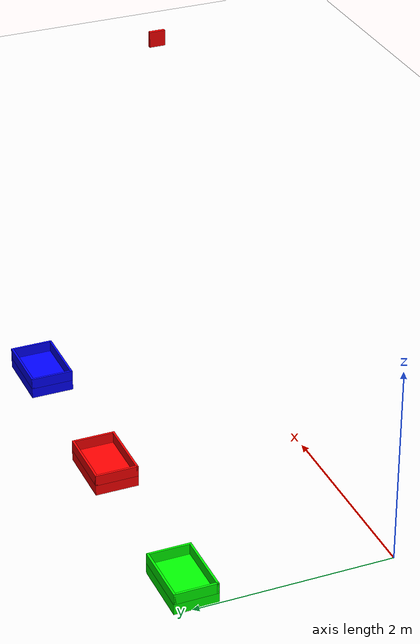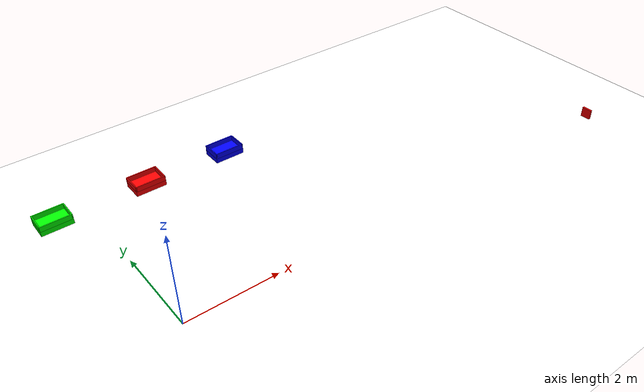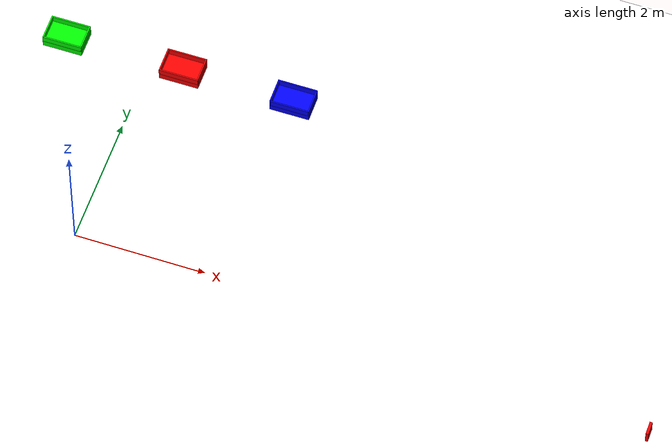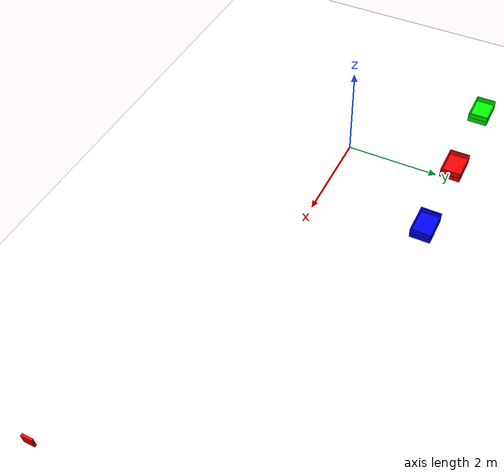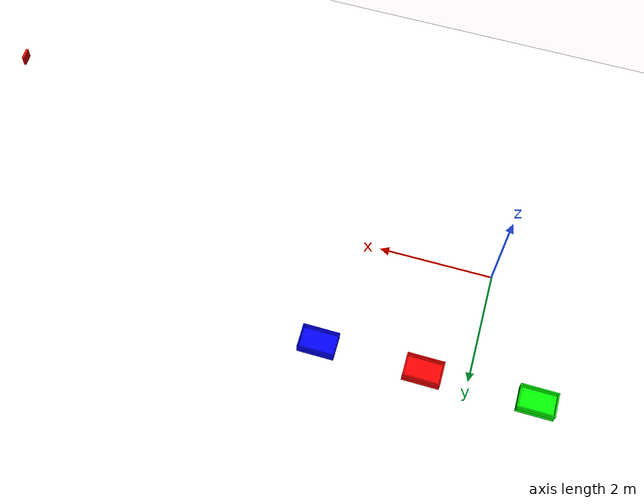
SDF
<sdf version="1.6">
 <world name="library_world">
  <physics type="ode">
   <max_step_size>0.004</max_step_size>
   <real_time_factor>1.0</real_time_factor>
   <real_time_update_rate>250</real_time_update_rate>
  </physics>
  <plugin name="gz::sim::systems::Physics" filename="gz-sim-physics-system"/>
  <plugin name="gz::sim::systems::UserCommands" filename="gz-sim-user-commands-system"/>
  <plugin name="gz::sim::systems::SceneBroadcaster" filename="gz-sim-scene-broadcaster-system"/>
  <plugin name="gz::sim::systems::Contact" filename="gz-sim-contact-system"/>
  <plugin name="gz::sim::systems::Imu" filename="gz-sim-imu-system"/>
  <plugin name="gz::sim::systems::AirPressure" filename="gz-sim-air-pressure-system"/>
  <plugin name="gz::sim::systems::Sensors" filename="gz-sim-sensors-system">
   <render_engine>ogre2</render_engine>
  </plugin>
  <gravity>0 0 -9.8000000000000007</gravity>
  <magnetic_field>5.5644999999999998e-06 2.2875799999999999e-05 -4.2388400000000002e-05</magnetic_field>
  <atmosphere type="adiabatic"/>
  <gravity>0 0 -9.8</gravity>
  <magnetic_field>6e-06 2.3e-05 -4.2e-05</magnetic_field>
  <atmosphere type="adiabatic"/>
  <scene>
   <grid>false</grid>
   <ambient>0.4 0.4 0.4 1</ambient>
   <background>0.7 0.7 0.7 1</background>
   <shadows>true</shadows>
  </scene>
  <model name="ground_plane">
   <static>true</static>
   <link name="link">
    <collision name="collision">
     <geometry><plane><normal>0 0 1</normal><size>100 100</size></plane></geometry>
    </collision>
    <visual name="visual">
     <geometry><plane><normal>0 0 1</normal><size>100 100</size></plane></geometry>
     <material>
      <ambient>1 1 1 1</ambient>
      <diffuse>1 1 1 1</diffuse>
      <specular>0.1 0.1 0.1 1</specular>
      <emissive>0 0 0 1</emissive>
     </material>
    </visual>
    <inertial>
     <mass>1</mass>
     <inertia><ixx>1</ixx><ixy>0</ixy><ixz>0</ixz><iyy>1</iyy><iyz>0</iyz><izz>1</izz></inertia>
    </inertial>
   </link>
  </model>
  <light name="sunUTC" type="directional">
   <pose>0 0 500 0 -0 0</pose>
   <intensity>1</intensity>
   <direction>0.001 0.625 -0.78</direction>
   <diffuse>0.904 0.904 0.904 1</diffuse>
   <specular>0.271 0.271 0.271 1</specular>
   <attenuation><range>2000</range><linear>0</linear><constant>1</constant><quadratic>0</quadratic></attenuation>
   <spot><inner_angle>0</inner_angle><outer_angle>0</outer_angle><falloff>0</falloff></spot>
  </light>
  <model name="book_box_red">
   <static>true</static>
   <pose>0.8 2.5 1.15 0 0 0</pose>
   <link name="link">
    <visual name="bottom">
     <geometry><box><size>0.6 0.4 0.1</size></box></geometry>
     <material><ambient>1 0 0 1</ambient><diffuse>1 0 0 1</diffuse></material>
    </visual>
    <visual name="back">
     <pose>0 -0.19 0.1 0 0 0</pose>
     <geometry><box><size>0.6 0.02 0.1</size></box></geometry>
     <material><ambient>1 0 0 1</ambient><diffuse>1 0 0 1</diffuse></material>
    </visual>
    <visual name="front">
     <pose>0 0.19 0.1 0 0 0</pose>
     <geometry><box><size>0.6 0.02 0.1</size></box></geometry>
     <material><ambient>1 0 0 1</ambient><diffuse>1 0 0 1</diffuse></material>
    </visual>
    <visual name="left">
     <pose>-0.29 0 0.1 0 0 0</pose>
     <geometry><box><size>0.02 0.4 0.1</size></box></geometry>
     <material><ambient>1 0 0 1</ambient><diffuse>1 0 0 1</diffuse></material>
    </visual>
    <visual name="right">
     <pose>0.29 0 0.1 0 0 0</pose>
     <geometry><box><size>0.02 0.4 0.1</size></box></geometry>
     <material><ambient>1 0 0 1</ambient><diffuse>1 0 0 1</diffuse></material>
    </visual>
   </link>
  </model>
  <model name="book_box_green">
   <static>true</static>
   <pose>-1.0 2.5 1.15 0 0 0</pose>
   <link name="link">
    <visual name="bottom">
     <geometry><box><size>0.6 0.4 0.1</size></box></geometry>
     <material><ambient>0 1 0 1</ambient><diffuse>0 1 0 1</diffuse></material>
    </visual>
    <visual name="back">
     <pose>0 -0.19 0.1 0 0 0</pose>
     <geometry><box><size>0.6 0.02 0.1</size></box></geometry>
     <material><ambient>0 1 0 1</ambient><diffuse>0 1 0 1</diffuse></material>
    </visual>
    <visual name="front">
     <pose>0 0.19 0.1 0 0 0</pose>
     <geometry><box><size>0.6 0.02 0.1</size></box></geometry>
     <material><ambient>0 1 0 1</ambient><diffuse>0 1 0 1</diffuse></material>
    </visual>
    <visual name="left">
     <pose>-0.29 0 0.1 0 0 0</pose>
     <geometry><box><size>0.02 0.4 0.1</size></box></geometry>
     <material><ambient>0 1 0 1</ambient><diffuse>0 1 0 1</diffuse></material>
    </visual>
    <visual name="right">
     <pose>0.29 0 0.1 0 0 0</pose>
     <geometry><box><size>0.02 0.4 0.1</size></box></geometry>
     <material><ambient>0 1 0 1</ambient><diffuse>0 1 0 1</diffuse></material>
    </visual>
   </link>
  </model>
  <model name="book_box_blue">
   <static>true</static>
   <pose>2.5 2.5 1.15 0 0 0</pose>
   <link name="link">
    <visual name="bottom">
     <geometry><box><size>0.6 0.4 0.1</size></box></geometry>
     <material><ambient>0 0 1 1</ambient><diffuse>0 0 1 1</diffuse></material>
    </visual>
    <visual name="back">
     <pose>0 -0.19 0.1 0 0 0</pose>
     <geometry><box><size>0.6 0.02 0.1</size></box></geometry>
     <material><ambient>0 0 1 1</ambient><diffuse>0 0 1 1</diffuse></material>
    </visual>
    <visual name="front">
     <pose>0 0.19 0.1 0 0 0</pose>
     <geometry><box><size>0.6 0.02 0.1</size></box></geometry>
     <material><ambient>0 0 1 1</ambient><diffuse>0 0 1 1</diffuse></material>
    </visual>
    <visual name="left">
     <pose>-0.29 0 0.1 0 0 0</pose>
     <geometry><box><size>0.02 0.4 0.1</size></box></geometry>
     <material><ambient>0 0 1 1</ambient><diffuse>0 0 1 1</diffuse></material>
    </visual>
    <visual name="right">
     <pose>0.29 0 0.1 0 0 0</pose>
     <geometry><box><size>0.02 0.4 0.1</size></box></geometry>
     <material><ambient>0 0 1 1</ambient><diffuse>0 0 1 1</diffuse></material>
    </visual>
   </link>
  </model>
  <model name="red_book">
   <static>false</static>
   <link name="link">
    <inertial>
     <mass>0.2</mass>
     <inertia><ixx>0.002</ixx><ixy>0</ixy><ixz>0</ixz><iyy>0.002</iyy><iyz>0</iyz><izz>0.001</izz></inertia>
    </inertial>
    <visual name="v">
     <geometry><box><size>0.04 0.20 0.20</size></box></geometry>
     <material><ambient>1 0 0 1</ambient><diffuse>1 0 0 1</diffuse><emissive>0.2 0 0 1</emissive></material>
    </visual>
    <collision name="c"><geometry><box><size>0.04 0.20 0.20</size></box></geometry></collision>
   </link>
   <pose>9.0 -1.25 1.36 0 0 0</pose>
  </model>
 </world>
</sdf>
